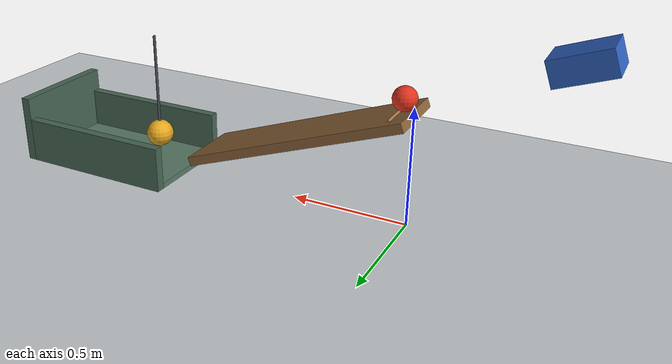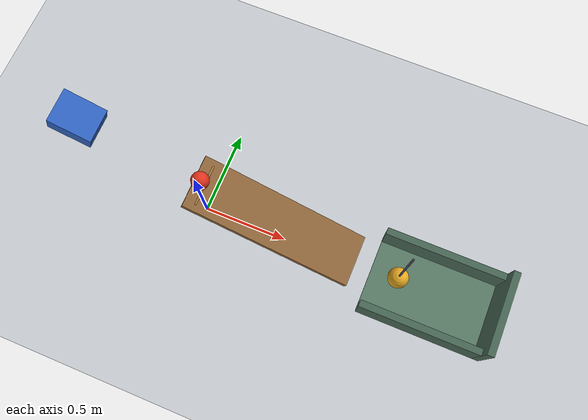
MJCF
<mujoco model="spring_cart_ramp_pendulum">
  <compiler angle="degree" autolimits="true"/>
  <option timestep="0.002" gravity="0 0 -9.81" integrator="implicitfast" cone="elliptic" iterations="100" tolerance="1e-10"/>
  <statistic center="0.55 0 0.35" extent="2.2"/>

  <!-- MuJoCo has no direct restitution attribute. Contact damping ratio 0.6901 targets restitution 0.05. -->
  <!-- Sliding friction is 0.68 throughout. Extra rolling resistance on the receiving deck helps the ball settle. -->
  <!-- The cart slide points downhill: gravity assists the spring, allowing the 0.50 m approach from rest. -->

  <worldbody>
    <light name="main_light" pos="0.3 -1.5 2.5" dir="0.2 0.4 -1" diffuse="0.85 0.85 0.85"/>
    <geom name="floor" type="plane" pos="0 0 0" size="3 2 0.1" friction="0.68 0.005 0.01" condim="6" solref="0.010 0.6901" solimp="0.95 0.95 0.001" rgba="0.78 0.80 0.82 1"/>

    <!-- Local x points down the 20-degree slope. The top surface runs from x=0 to x=1 locally. -->
    <!-- Its low edge is at world z=0.15. -->
    <body name="ramp1" pos="0 0 0.492020143326" quat="0.984807753012 0 0.173648177667 0">
      <geom name="ramp1_surface" type="box" pos="0.5 0 -0.02" size="0.5 0.15 0.02" friction="0.68 0.005 0.0001" condim="6" solref="0.010 0.6901" solimp="0.95 0.95 0.001" rgba="0.55 0.39 0.22 1"/>
      <!-- A small detent holds the initially stationary ball until the cart nudges it over. -->
      <geom name="ramp1_ball_detent" type="capsule" fromto="0.059641016151 -0.11 0.006 0.059641016151 0.11 0.006" size="0.006" friction="0.68 0.005 0.0001" condim="6" solref="0.010 0.6901" solimp="0.95 0.95 0.001" rgba="0.65 0.46 0.25 1"/>
    </body>

    <!-- At q=0, spring compression is 0.20 m and the cart's front face is 0.50 m from the ball. -->
    <body name="cart1" pos="-0.574473504883 0 0.770282954689" quat="0.984807753012 0 0.173648177667 0">
      <joint name="cart1_slide" type="slide" axis="1 0 0" damping="0.20" stiffness="18" springref="0.20" limited="true" range="0 0.56" solreflimit="0.010 0.6901" solimplimit="0.95 0.95 0.001"/>
      <geom name="cart1_box" type="box" size="0.11 0.09 0.05" mass="0.50" friction="0.68 0.005 0.0001" condim="6" solref="0.010 0.6901" solimp="0.95 0.95 0.001" rgba="0.18 0.38 0.75 1"/>
    </body>

    <body name="ball1" pos="0.040593322686 0 0.530454270782">
      <freejoint name="ball1_free"/>
      <geom name="ball1_sphere" type="sphere" size="0.05" mass="0.20" friction="0.68 0.005 0.0001" condim="6" solref="0.010 0.6901" solimp="0.95 0.95 0.001" rgba="0.88 0.20 0.12 1"/>
    </body>

    <!-- The bob sits beyond the gap, in the ball's airborne path. -->
    <body name="pendulum1" pos="1.189692620786 0 0.61">
      <joint name="pendulum1_hinge" type="hinge" axis="0 1 0" damping="0.04" limited="true" range="-75 75" solreflimit="0.010 0.6901" solimplimit="0.95 0.95 0.001"/>
      <geom name="pendulum1_rod" type="capsule" fromto="0 0 0 0 0 -0.39" size="0.006" mass="0.015" friction="0.68 0.005 0.0001" condim="6" solref="0.010 0.6901" solimp="0.95 0.95 0.001" rgba="0.25 0.27 0.30 1"/>
      <geom name="pendulum1_bob" type="sphere" pos="0 0 -0.45" size="0.06" mass="0.20" friction="0.68 0.005 0.0001" condim="6" solref="0.010 0.6901" solimp="0.95 0.95 0.001" rgba="0.90 0.66 0.12 1"/>
    </body>

    <!-- Ramp low edge: x=0.939692620786. Receiving deck begins at x=1.039692620786: a 0.10 m gap. -->
    <body name="catch_deck" pos="0 0 0">
      <geom name="catch_deck_surface" type="box" pos="1.389692620786 0 0.0125" size="0.35 0.20 0.0125" friction="0.68 0.005 0.01" condim="6" solref="0.010 0.6901" solimp="0.95 0.95 0.001" rgba="0.35 0.48 0.40 1"/>
      <geom name="catch_deck_end_wall" type="box" pos="1.759692620786 0 0.15" size="0.02 0.24 0.15" friction="0.68 0.005 0.01" condim="6" solref="0.010 0.6901" solimp="0.95 0.95 0.001" rgba="0.28 0.40 0.33 1"/>
      <geom name="catch_deck_left_wall" type="box" pos="1.389692620786 0.22 0.10" size="0.35 0.02 0.10" friction="0.68 0.005 0.01" condim="6" solref="0.010 0.6901" solimp="0.95 0.95 0.001" rgba="0.28 0.40 0.33 1"/>
      <geom name="catch_deck_right_wall" type="box" pos="1.389692620786 -0.22 0.10" size="0.35 0.02 0.10" friction="0.68 0.005 0.01" condim="6" solref="0.010 0.6901" solimp="0.95 0.95 0.001" rgba="0.28 0.40 0.33 1"/>
    </body>
  </worldbody>

  <keyframe>
    <key name="start" time="0" qpos="0 0.040593322686 0 0.530454270782 1 0 0 0 0" qvel="0 0 0 0 0 0 0 0"/>
  </keyframe>
</mujoco>
